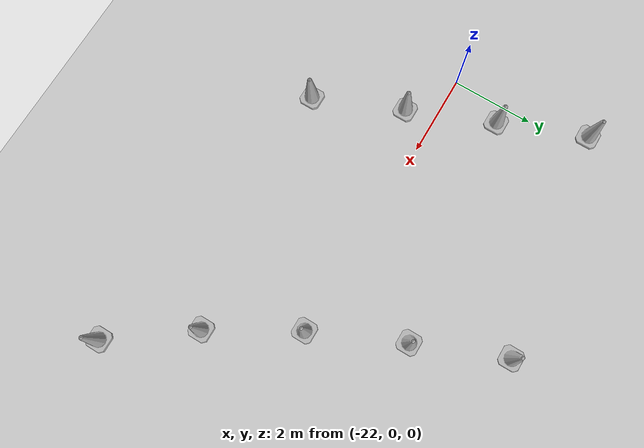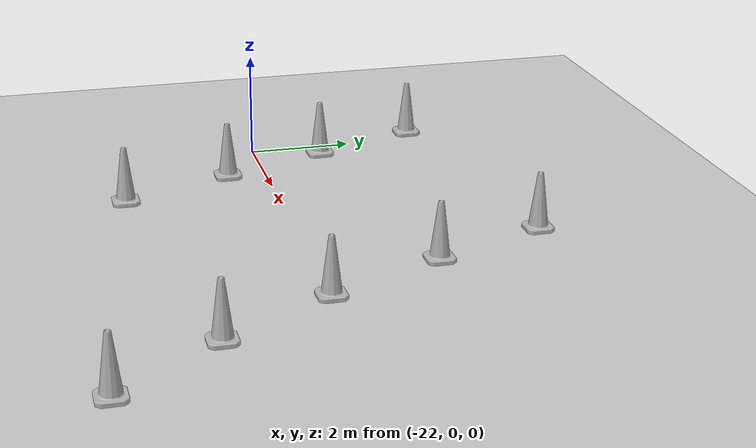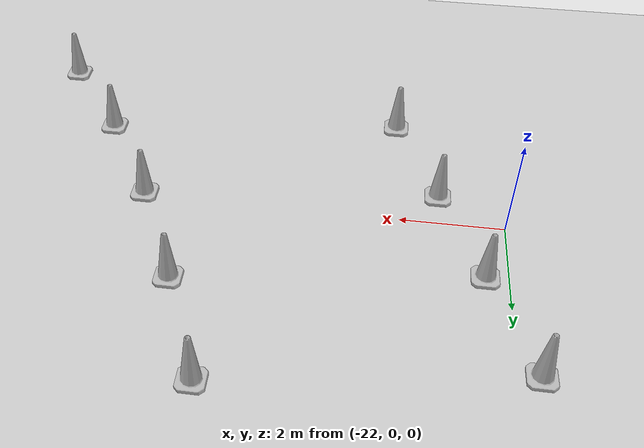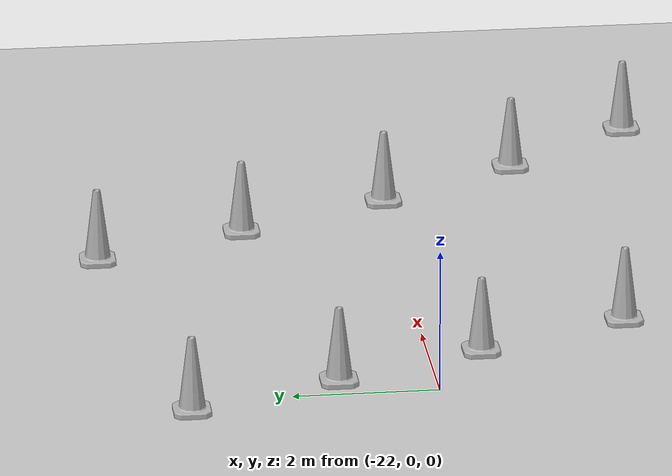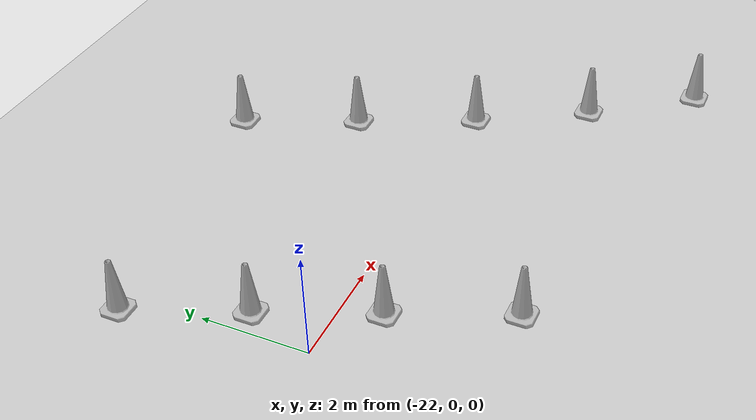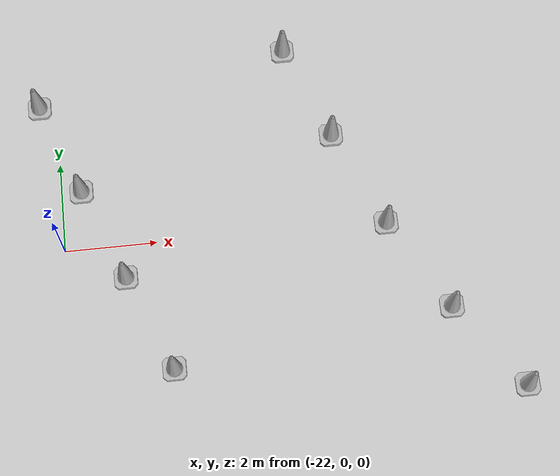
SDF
<sdf version="1.7">
 <world name="default">
  <model name="ground_plane">
   <static>1</static>
   <link name="link">
    <collision name="collision">
     <geometry><plane><normal>0 0 1</normal><size>125 125</size></plane></geometry>
     <surface>
      <contact><collide_bitmask>65535</collide_bitmask></contact>
      <friction><ode><mu>100</mu><mu2>50</mu2></ode></friction>
     </surface>
    </collision>
    <visual name="visual">
     <cast_shadows>0</cast_shadows>
     <geometry><plane><normal>0 0 1</normal><size>125 125</size></plane></geometry>
     <material>
      <script><uri>file://media/materials/scripts/gazebo.material</uri><name>Gazebo/Grey</name></script>
     </material>
    </visual>
   </link>
  </model>
  <model name="Construction Cone 163">
   <link name="link">
    <collision name="collision">
     <geometry>
      <mesh><scale>10 10 10</scale><uri>model://construction_cone/meshes/construction_cone.dae</uri></mesh>
     </geometry>
    </collision>
    <visual name="visual">
     <geometry>
      <mesh><scale>10 10 10</scale><uri>model://construction_cone/meshes/construction_cone.dae</uri></mesh>
     </geometry>
    </visual>
    <inertial>
     <inertia><ixx>1</ixx><ixy>0</ixy><ixz>0</ixz><iyy>1</iyy><iyz>0</iyz><izz>1</izz></inertia>
     <mass>1</mass>
    </inertial>
   </link>
   <pose>-16.82775161880874 4.21285582765605 0 0 0 0</pose>
  </model>
  <model name="Construction Cone 167">
   <link name="link">
    <collision name="collision">
     <geometry>
      <mesh><scale>10 10 10</scale><uri>model://construction_cone/meshes/construction_cone.dae</uri></mesh>
     </geometry>
    </collision>
    <visual name="visual">
     <geometry>
      <mesh><scale>10 10 10</scale><uri>model://construction_cone/meshes/construction_cone.dae</uri></mesh>
     </geometry>
    </visual>
    <inertial>
     <inertia><ixx>1</ixx><ixy>0</ixy><ixz>0</ixz><iyy>1</iyy><iyz>0</iyz><izz>1</izz></inertia>
     <mass>1</mass>
    </inertial>
   </link>
   <pose>-22.373660709717832 3.3851285549287695 0 0 0 0</pose>
  </model>
  <model name="Construction Cone 171">
   <link name="link">
    <collision name="collision">
     <geometry>
      <mesh><scale>10 10 10</scale><uri>model://construction_cone/meshes/construction_cone.dae</uri></mesh>
     </geometry>
    </collision>
    <visual name="visual">
     <geometry>
      <mesh><scale>10 10 10</scale><uri>model://construction_cone/meshes/construction_cone.dae</uri></mesh>
     </geometry>
    </visual>
    <inertial>
     <inertia><ixx>1</ixx><ixy>0</ixy><ixz>0</ixz><iyy>1</iyy><iyz>0</iyz><izz>1</izz></inertia>
     <mass>1</mass>
    </inertial>
   </link>
   <pose>-15.963520849577968 2.0851635199637357 0 0 0 0</pose>
  </model>
  <model name="Construction Cone 175">
   <link name="link">
    <collision name="collision">
     <geometry>
      <mesh><scale>10 10 10</scale><uri>model://construction_cone/meshes/construction_cone.dae</uri></mesh>
     </geometry>
    </collision>
    <visual name="visual">
     <geometry>
      <mesh><scale>10 10 10</scale><uri>model://construction_cone/meshes/construction_cone.dae</uri></mesh>
     </geometry>
    </visual>
    <inertial>
     <inertia><ixx>1</ixx><ixy>0</ixy><ixz>0</ixz><iyy>1</iyy><iyz>0</iyz><izz>1</izz></inertia>
     <mass>1</mass>
    </inertial>
   </link>
   <pose>-21.567751618808742 1.3178558276560466 0 0 0 0</pose>
  </model>
  <model name="Construction Cone 181">
   <link name="link">
    <collision name="collision">
     <geometry>
      <mesh><scale>10 10 10</scale><uri>model://construction_cone/meshes/construction_cone.dae</uri></mesh>
     </geometry>
    </collision>
    <visual name="visual">
     <geometry>
      <mesh><scale>10 10 10</scale><uri>model://construction_cone/meshes/construction_cone.dae</uri></mesh>
     </geometry>
    </visual>
    <inertial>
     <inertia><ixx>1</ixx><ixy>0</ixy><ixz>0</ixz><iyy>1</iyy><iyz>0</iyz><izz>1</izz></inertia>
     <mass>1</mass>
    </inertial>
   </link>
   <pose>-14.997751618808742 -0.06964417234395626 0 0 0 0</pose>
  </model>
  <model name="Construction Cone 184">
   <link name="link">
    <collision name="collision">
     <geometry>
      <mesh><scale>10 10 10</scale><uri>model://construction_cone/meshes/construction_cone.dae</uri></mesh>
     </geometry>
    </collision>
    <visual name="visual">
     <geometry>
      <mesh><scale>10 10 10</scale><uri>model://construction_cone/meshes/construction_cone.dae</uri></mesh>
     </geometry>
    </visual>
    <inertial>
     <inertia><ixx>1</ixx><ixy>0</ixy><ixz>0</ixz><iyy>1</iyy><iyz>0</iyz><izz>1</izz></inertia>
     <mass>1</mass>
    </inertial>
   </link>
   <pose>-20.73525161880874 -0.7311441723439529 0 0 0 0</pose>
  </model>
  <model name="Construction Cone 189">
   <link name="link">
    <collision name="collision">
     <geometry>
      <mesh><scale>10 10 10</scale><uri>model://construction_cone/meshes/construction_cone.dae</uri></mesh>
     </geometry>
    </collision>
    <visual name="visual">
     <geometry>
      <mesh><scale>10 10 10</scale><uri>model://construction_cone/meshes/construction_cone.dae</uri></mesh>
     </geometry>
    </visual>
    <inertial>
     <inertia><ixx>1</ixx><ixy>0</ixy><ixz>0</ixz><iyy>1</iyy><iyz>0</iyz><izz>1</izz></inertia>
     <mass>1</mass>
    </inertial>
   </link>
   <pose>-13.834674695731813 -2.079067249267027 0 0 0 0</pose>
  </model>
  <model name="Construction Cone 192">
   <link name="link">
    <collision name="collision">
     <geometry>
      <mesh><scale>10 10 10</scale><uri>model://construction_cone/meshes/construction_cone.dae</uri></mesh>
     </geometry>
    </collision>
    <visual name="visual">
     <geometry>
      <mesh><scale>10 10 10</scale><uri>model://construction_cone/meshes/construction_cone.dae</uri></mesh>
     </geometry>
    </visual>
    <inertial>
     <inertia><ixx>1</ixx><ixy>0</ixy><ixz>0</ixz><iyy>1</iyy><iyz>0</iyz><izz>1</izz></inertia>
     <mass>1</mass>
    </inertial>
   </link>
   <pose>-19.85775161880874 -2.8371441723439546 0 0 0 0</pose>
  </model>
  <model name="Construction Cone 197">
   <link name="link">
    <collision name="collision">
     <geometry>
      <mesh><scale>10 10 10</scale><uri>model://construction_cone/meshes/construction_cone.dae</uri></mesh>
     </geometry>
    </collision>
    <visual name="visual">
     <geometry>
      <mesh><scale>10 10 10</scale><uri>model://construction_cone/meshes/construction_cone.dae</uri></mesh>
     </geometry>
    </visual>
    <inertial>
     <inertia><ixx>1</ixx><ixy>0</ixy><ixz>0</ixz><iyy>1</iyy><iyz>0</iyz><izz>1</izz></inertia>
     <mass>1</mass>
    </inertial>
   </link>
   <pose>-12.481842527899651 -3.929416899616676 0 0 0 0</pose>
  </model>
 </world>
</sdf>
